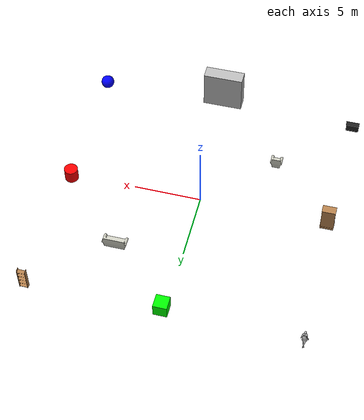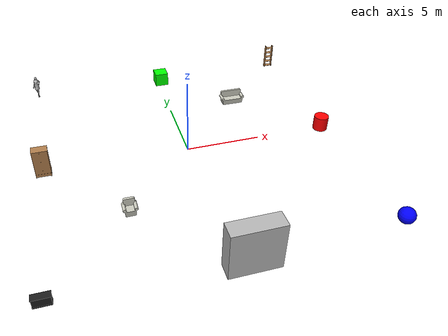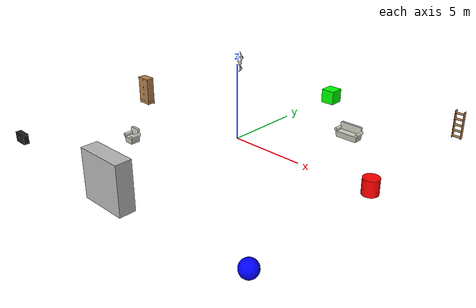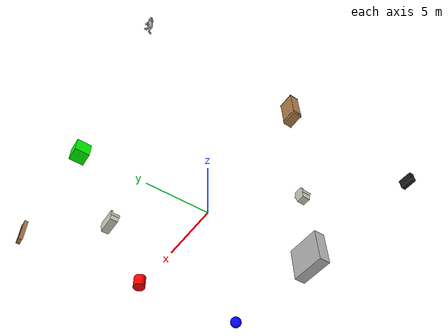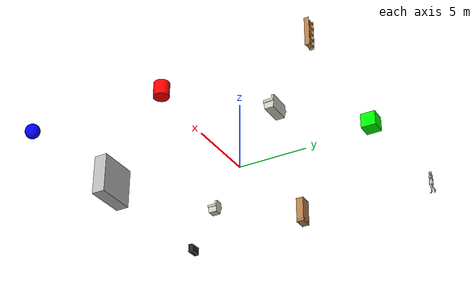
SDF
<?xml version='1.0'?>
<sdf version='1.6'>
  <model name='env4'>
    <link name='link_0'>
      <inertial>
        <mass>1</mass>
        <inertia>
          <ixx>0.166667</ixx>
          <ixy>0</ixy>
          <ixz>0</ixz>
          <iyy>0.166667</iyy>
          <iyz>0</iyz>
          <izz>0.166667</izz>
        </inertia>
      </inertial>
      <pose frame=''>0.299914 9.75681 0.35 0 -0 0</pose>
      <visual name='visual'>
        <pose frame=''>0 0 0 0 -0 0</pose>
        <geometry>
          <box>
            <size>1 1 1</size>
          </box>
        </geometry>
        <material>
          <lighting>1</lighting>
          <script>
            <uri>file://media/materials/scripts/gazebo.material</uri>
            <name>Gazebo/Grey</name>
          </script><!-- Green -->
            <ambient>0 1 0 1</ambient>
            <diffuse>0 1 0 1</diffuse>
            <specular>0 0 0 0</specular>
            <emissive>0 0 0 0</emissive>
        </material>
        <transparency>0</transparency>
        <cast_shadows>1</cast_shadows>
      </visual>
      <collision name='collision'>
        <laser_retro>0</laser_retro>
        <max_contacts>10</max_contacts>
        <pose frame=''>0 0 0 0 -0 0</pose>
        <geometry>
          <box>
            <size>1 1 1</size>
          </box>
        </geometry>
        <surface>
          <friction>
            <ode>
              <mu>1</mu>
              <mu2>1</mu2>
              <fdir1>0 0 0</fdir1>
              <slip1>0</slip1>
              <slip2>0</slip2>
            </ode>
            <torsional>
              <coefficient>1</coefficient>
              <patch_radius>0</patch_radius>
              <surface_radius>0</surface_radius>
              <use_patch_radius>1</use_patch_radius>
              <ode>
                <slip>0</slip>
              </ode>
            </torsional>
          </friction>
          <bounce>
            <restitution_coefficient>0</restitution_coefficient>
            <threshold>1e+06</threshold>
          </bounce>
          <contact>
            <collide_without_contact>0</collide_without_contact>
            <collide_without_contact_bitmask>1</collide_without_contact_bitmask>
            <collide_bitmask>1</collide_bitmask>
            <ode>
              <soft_cfm>0</soft_cfm>
              <soft_erp>0.2</soft_erp>
              <kp>1e+13</kp>
              <kd>1</kd>
              <max_vel>0.01</max_vel>
              <min_depth>0</min_depth>
            </ode>
            <bullet>
              <split_impulse>1</split_impulse>
              <split_impulse_penetration_threshold>-0.01</split_impulse_penetration_threshold>
              <soft_cfm>0</soft_cfm>
              <soft_erp>0.2</soft_erp>
              <kp>1e+13</kp>
              <kd>1</kd>
            </bullet>
          </contact>
        </surface>
      </collision>
    </link>
    <link name='link_1'>
      <inertial>
        <mass>1</mass>
        <inertia>
          <ixx>0.145833</ixx>
          <ixy>0</ixy>
          <ixz>0</ixz>
          <iyy>0.145833</iyy>
          <iyz>0</iyz>
          <izz>0.125</izz>
        </inertia>
      </inertial>
      <pose frame=''>9.89691 0.141675 0.35 0 -0 0</pose>
      <visual name='visual'>
        <pose frame=''>0 0 0 0 -0 0</pose>
        <geometry>
          <cylinder>
            <radius>0.5</radius>
            <length>1</length>
          </cylinder>
        </geometry>
        <material>
          <lighting>1</lighting>
          <script>
            <uri>file://media/materials/scripts/gazebo.material</uri>
            <name>Gazebo/Grey</name>
          </script><!-- Red -->
            <ambient>1 0 0 1</ambient>
            <diffuse>1 0 0 1</diffuse>
            <specular>0 0 0 0</specular>
            <emissive>0 0 0 0</emissive>
        </material>
        <transparency>0</transparency>
        <cast_shadows>1</cast_shadows>
      </visual>
      <collision name='collision'>
        <laser_retro>0</laser_retro>
        <max_contacts>10</max_contacts>
        <pose frame=''>0 0 0 0 -0 0</pose>
        <geometry>
          <cylinder>
            <radius>0.5</radius>
            <length>1</length>
          </cylinder>
        </geometry>
        <surface>
          <friction>
            <ode>
              <mu>1</mu>
              <mu2>1</mu2>
              <fdir1>0 0 0</fdir1>
              <slip1>0</slip1>
              <slip2>0</slip2>
            </ode>
            <torsional>
              <coefficient>1</coefficient>
              <patch_radius>0</patch_radius>
              <surface_radius>0</surface_radius>
              <use_patch_radius>1</use_patch_radius>
              <ode>
                <slip>0</slip>
              </ode>
            </torsional>
          </friction>
          <bounce>
            <restitution_coefficient>0</restitution_coefficient>
            <threshold>1e+06</threshold>
          </bounce>
          <contact>
            <collide_without_contact>0</collide_without_contact>
            <collide_without_contact_bitmask>1</collide_without_contact_bitmask>
            <collide_bitmask>1</collide_bitmask>
            <ode>
              <soft_cfm>0</soft_cfm>
              <soft_erp>0.2</soft_erp>
              <kp>1e+13</kp>
              <kd>1</kd>
              <max_vel>0.01</max_vel>
              <min_depth>0</min_depth>
            </ode>
            <bullet>
              <split_impulse>1</split_impulse>
              <split_impulse_penetration_threshold>-0.01</split_impulse_penetration_threshold>
              <soft_cfm>0</soft_cfm>
              <soft_erp>0.2</soft_erp>
              <kp>1e+13</kp>
              <kd>1</kd>
            </bullet>
          </contact>
        </surface>
      </collision>
    </link>
    <link name='link_2'>
      <inertial>
        <mass>1</mass>
        <inertia>
          <ixx>0.1</ixx>
          <ixy>0</ixy>
          <ixz>0</ixz>
          <iyy>0.1</iyy>
          <iyz>0</iyz>
          <izz>0.1</izz>
        </inertia>
      </inertial>
      <pose frame=''>10.0692 -9.66624 0.35 0 -0 0</pose>
      <visual name='visual'>
        <pose frame=''>0 0 0 0 -0 0</pose>
        <geometry>
          <sphere>
            <radius>0.5</radius>
          </sphere>
        </geometry>
        <material>
          <lighting>1</lighting>
          <script>
            <uri>file://media/materials/scripts/gazebo.material</uri>
            <name>Gazebo/Grey</name>
          </script><!-- Blue -->
            <ambient>0 0 1 1</ambient>
            <diffuse>0 0 1 1</diffuse>
            <specular>0 0 0 0</specular>
            <emissive>0 0 0 0</emissive>
        </material>
        <transparency>0</transparency>
        <cast_shadows>1</cast_shadows>
      </visual>
      <collision name='collision'>
        <laser_retro>0</laser_retro>
        <max_contacts>10</max_contacts>
        <pose frame=''>0 0 0 0 -0 0</pose>
        <geometry>
          <sphere>
            <radius>0.5</radius>
          </sphere>
        </geometry>
        <surface>
          <friction>
            <ode>
              <mu>1</mu>
              <mu2>1</mu2>
              <fdir1>0 0 0</fdir1>
              <slip1>0</slip1>
              <slip2>0</slip2>
            </ode>
            <torsional>
              <coefficient>1</coefficient>
              <patch_radius>0</patch_radius>
              <surface_radius>0</surface_radius>
              <use_patch_radius>1</use_patch_radius>
              <ode>
                <slip>0</slip>
              </ode>
            </torsional>
          </friction>
          <bounce>
            <restitution_coefficient>0</restitution_coefficient>
            <threshold>1e+06</threshold>
          </bounce>
          <contact>
            <collide_without_contact>0</collide_without_contact>
            <collide_without_contact_bitmask>1</collide_without_contact_bitmask>
            <collide_bitmask>1</collide_bitmask>
            <ode>
              <soft_cfm>0</soft_cfm>
              <soft_erp>0.2</soft_erp>
              <kp>1e+13</kp>
              <kd>1</kd>
              <max_vel>0.01</max_vel>
              <min_depth>0</min_depth>
            </ode>
            <bullet>
              <split_impulse>1</split_impulse>
              <split_impulse_penetration_threshold>-0.01</split_impulse_penetration_threshold>
              <soft_cfm>0</soft_cfm>
              <soft_erp>0.2</soft_erp>
              <kp>1e+13</kp>
              <kd>1</kd>
            </bullet>
          </contact>
        </surface>
      </collision>
    </link>
    <model name='arm_chair'>
      <static>1</static>
      <link name='link'>
        <collision name='colision1'>
          <pose frame=''>0 0 0 0 -0 0</pose>
          <geometry>
            <mesh>
              <uri>model://arm_chair/meshes/arm_chair.stl</uri>
              <scale>1 1 1</scale>
            </mesh>
          </geometry>
          <surface>
            <bounce/>
            <friction>
              <ode/>
            </friction>
            <contact>
              <ode/>
            </contact>
          </surface>
        </collision>
        <visual name='visual1'>
          <pose frame=''>0 0 0 0 -0 0</pose>
          <geometry>
            <mesh>
              <uri>model://arm_chair/meshes/arm_chair.stl</uri>
              <scale>1 1 1</scale>
            </mesh>
          </geometry>
          <material>
            <script>
              <uri>file://media/materials/scripts/gazebo.material</uri>
              <name>Gazebo/PaintedWall</name>
            </script>
          </material>
        </visual>
        <velocity_decay>
          <linear>0</linear>
          <angular>0</angular>
        </velocity_decay>
        <self_collide>0</self_collide>
        <kinematic>0</kinematic>
        <gravity>1</gravity>
      </link>
      <pose frame=''>-5.04002 -5.08224 -0.15 0 -0 0</pose>
    </model>
    <model name='brick_box_3x1x3'>
      <static>1</static>
      <link name='chassis'>
        <pose frame=''>0 0 1.5 0 -0 0</pose>
        <collision name='collision'>
          <geometry>
            <box>
              <size>3 1 3</size>
            </box>
          </geometry>
        </collision>
        <visual name='visual'>
          <geometry>
            <mesh>
              <uri>model://brick_box_3x1x3/meshes/simple_box.dae</uri>
              <scale>3 1 3</scale>
            </mesh>
          </geometry>
          <material>
            <script>
              <uri>model://brick_box_3x1x3/materials/scripts</uri>
              <uri>model://brick_box_3x1x3/materials/textures</uri>
              <name>BrickBox/Diffuse</name>
            </script>
          </material>
        </visual>
      </link>
      <pose frame=''>0.636447 -10.2481 -0.15 0 -0 0</pose>
    </model>
    <model name='citizen_extras_female_02'>
      <link name='link'>
        <inertial>
          <mass>20</mass>
          <inertia>
            <ixx>0</ixx>
            <ixy>0</ixy>
            <ixz>0</ixz>
            <iyy>0</iyy>
            <iyz>0</iyz>
            <izz>0</izz>
          </inertia>
        </inertial>
        <collision name='collision'>
          <pose frame=''>0 0 0 0 -0 0</pose>
          <geometry>
            <mesh>
              <uri>model://citizen_extras_female_02/meshes/mesh.dae</uri>
            </mesh>
          </geometry>
        </collision>
        <visual name='visual'>
          <pose frame=''>0 0 0 0 -0 0</pose>
          <geometry>
            <mesh>
              <uri>model://citizen_extras_female_02/meshes/mesh.dae</uri>
            </mesh>
          </geometry>
        </visual>
      </link>
      <pose frame=''>-9.59321 10.2222 -0.15 0 -0 0</pose>
    </model>
    <model name='closet'>
      <static>1</static>
      <link name='link'>
        <collision name='colision1'>
          <pose frame=''>0 0 0 0 -0 0</pose>
          <geometry>
            <mesh>
              <uri>model://closet/meshes/closet.stl</uri>
              <scale>1 1 1</scale>
            </mesh>
          </geometry>
          <surface>
            <bounce/>
            <friction>
              <ode/>
            </friction>
            <contact>
              <ode/>
            </contact>
          </surface>
        </collision>
        <visual name='visual1'>
          <pose frame=''>0 0 0 0 -0 0</pose>
          <geometry>
            <mesh>
              <uri>model://closet/meshes/closet.stl</uri>
              <scale>1 1 1</scale>
            </mesh>
          </geometry>
          <material>
            <script>
              <uri>file://media/materials/scripts/gazebo.material</uri>
              <name>Gazebo/WoodFloor</name>
            </script>
          </material>
        </visual>
        <velocity_decay>
          <linear>0</linear>
          <angular>0</angular>
        </velocity_decay>
        <self_collide>0</self_collide>
        <kinematic>0</kinematic>
        <gravity>1</gravity>
      </link>
      <pose frame=''>9.73024 10.0267 -0.15 0 -0 0</pose>
    </model>
    <model name='sideboard'>
      <static>1</static>
      <link name='link'>
        <collision name='colision1'>
          <pose frame=''>0 0 0 0 -0 0</pose>
          <geometry>
            <mesh>
              <uri>model://sideboard/meshes/sideboard.stl</uri>
              <scale>1 1 1</scale>
            </mesh>
          </geometry>
          <surface>
            <bounce/>
            <friction>
              <ode/>
            </friction>
            <contact>
              <ode/>
            </contact>
          </surface>
        </collision>
        <visual name='visual1'>
          <pose frame=''>0 0 0 0 -0 0</pose>
          <geometry>
            <mesh>
              <uri>model://sideboard/meshes/sideboard.stl</uri>
              <scale>1 1 1</scale>
            </mesh>
          </geometry>
          <material>
            <script>
              <uri>file://media/materials/scripts/gazebo.material</uri>
              <name>Gazebo/FlatBlack</name>
            </script>
          </material>
        </visual>
        <velocity_decay>
          <linear>0</linear>
          <angular>0</angular>
        </velocity_decay>
        <self_collide>0</self_collide>
        <kinematic>0</kinematic>
        <gravity>1</gravity>
      </link>
      <pose frame=''>-10.2681 -9.90368 -0.15 0 -0 0</pose>
    </model>
    <model name='sofa'>
      <static>1</static>
      <link name='link'>
        <collision name='colision1'>
          <pose frame=''>0 0 0 0 -0 0</pose>
          <geometry>
            <mesh>
              <uri>model://sofa/meshes/sofa.stl</uri>
              <scale>1 1 1</scale>
            </mesh>
          </geometry>
          <surface>
            <bounce/>
            <friction>
              <ode/>
            </friction>
            <contact>
              <ode/>
            </contact>
          </surface>
        </collision>
        <visual name='visual1'>
          <pose frame=''>0 0 0 0 -0 0</pose>
          <geometry>
            <mesh>
              <uri>model://sofa/meshes/sofa.stl</uri>
              <scale>1 1 1</scale>
            </mesh>
          </geometry>
          <material>
            <script>
              <uri>file://media/materials/scripts/gazebo.material</uri>
              <name>Gazebo/PaintedWall</name>
            </script>
          </material>
        </visual>
        <velocity_decay>
          <linear>0</linear>
          <angular>0</angular>
        </velocity_decay>
        <self_collide>0</self_collide>
        <kinematic>0</kinematic>
        <gravity>1</gravity>
      </link>
      <pose frame=''>4.19549 4.97546 -0.15 0 -0 0</pose>
    </model>
    <model name='wardrobe'>
      <static>1</static>
      <link name='link'>
        <collision name='colision1'>
          <pose frame=''>0 0 0 0 -0 0</pose>
          <geometry>
            <mesh>
              <uri>model://wardrobe/meshes/wardrobe.stl</uri>
              <scale>1 1 1</scale>
            </mesh>
          </geometry>
          <surface>
            <bounce/>
            <friction>
              <ode/>
            </friction>
            <contact>
              <ode/>
            </contact>
          </surface>
        </collision>
        <visual name='visual1'>
          <pose frame=''>0 0 0 0 -0 0</pose>
          <geometry>
            <mesh>
              <uri>model://wardrobe/meshes/wardrobe.stl</uri>
              <scale>1 1 1</scale>
            </mesh>
          </geometry>
          <material>
            <script>
              <uri>file://media/materials/scripts/gazebo.material</uri>
              <name>Gazebo/WoodPallet</name>
            </script>
          </material>
        </visual>
        <velocity_decay>
          <linear>0</linear>
          <angular>0</angular>
        </velocity_decay>
        <self_collide>0</self_collide>
        <kinematic>0</kinematic>
        <gravity>1</gravity>
      </link>
      <pose frame=''>-9.92686 -0.222571 -0.15 0 -0 0</pose>
    </model>
    <static>0</static>
    <allow_auto_disable>1</allow_auto_disable>
  </model>
</sdf>
